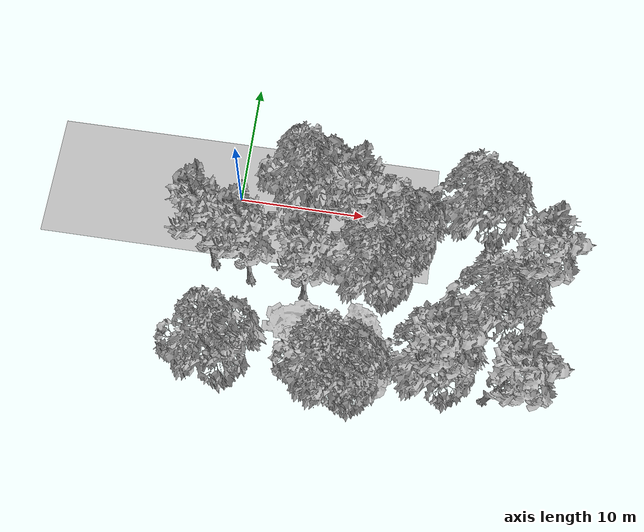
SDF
<sdf version="1.7">
 <world name="default">
  <model name="ground_plane">
   <static>1</static>
   <link name="link">
    <collision name="collision">
     <pose>-50 0 0 0 -0 0</pose>
     <geometry><plane><normal>0 0 1</normal><size>100 100</size></plane></geometry>
     <surface><contact><ode><min_depth>0.01</min_depth><max_vel>0</max_vel></ode></contact></surface>
    </collision>
    <visual name="grass">
     <cast_shadows>0</cast_shadows>
     <geometry>
      <mesh>
       <scale>0.5814285714285714 0.18142857142857144 0.1</scale>
       <uri>file://grass_plane/meshes/grass_plane.dae</uri>
      </mesh>
     </geometry>
    </visual>
   </link>
  </model>
  <model name="Tree 6">
   <static>1</static>
   <pose>12.257597133794576 -3.4394781878889944 0 1.57079 -0 0</pose>
   <link name="link">
    <collision name="collision">
     <geometry><mesh><scale>3.5 5 3.5</scale><uri>model://tree_2/meshes/tree_2.obj</uri></mesh></geometry>
    </collision>
    <visual name="visual">
     <geometry><mesh><scale>3.5 5 3.5</scale><uri>model://tree_2/meshes/tree_2.obj</uri></mesh></geometry>
    </visual>
   </link>
  </model>
  <model name="Tree 21">
   <static>1</static>
   <pose>10.91396890119536 -6.259870758829594 0 1.57079 -0 0</pose>
   <link name="link">
    <collision name="collision">
     <geometry><mesh><scale>3.5 5 3.5</scale><uri>model://tree_2/meshes/tree_2.obj</uri></mesh></geometry>
    </collision>
    <visual name="visual">
     <geometry><mesh><scale>3.5 5 3.5</scale><uri>model://tree_2/meshes/tree_2.obj</uri></mesh></geometry>
    </visual>
   </link>
  </model>
  <model name="Tree 28">
   <static>1</static>
   <pose>5.483641039165377 -0.23342204951496015 0 1.57079 -0 0</pose>
   <link name="link">
    <collision name="collision">
     <geometry><mesh><scale>3.5 5 3.5</scale><uri>model://tree_2/meshes/tree_2.obj</uri></mesh></geometry>
    </collision>
    <visual name="visual">
     <geometry><mesh><scale>3.5 5 3.5</scale><uri>model://tree_2/meshes/tree_2.obj</uri></mesh></geometry>
    </visual>
   </link>
  </model>
  <model name="Tree 30">
   <static>1</static>
   <pose>5.7039060267208725 -10.096312875466905 0 1.57079 -0 0</pose>
   <link name="link">
    <collision name="collision">
     <geometry><mesh><scale>3 2 3</scale><uri>model://tree_3/meshes/tree_3.obj</uri></mesh></geometry>
    </collision>
    <visual name="visual">
     <geometry><mesh><scale>3 2 3</scale><uri>model://tree_3/meshes/tree_3.obj</uri></mesh></geometry>
    </visual>
   </link>
  </model>
  <model name="Tree 35">
   <static>1</static>
   <pose>15.699044890828361 -12.399530788900833 0 1.57079 -0 0</pose>
   <link name="link">
    <collision name="collision">
     <geometry><mesh><scale>3.5 5 3.5</scale><uri>model://tree_2/meshes/tree_2.obj</uri></mesh></geometry>
    </collision>
    <visual name="visual">
     <geometry><mesh><scale>3.5 5 3.5</scale><uri>model://tree_2/meshes/tree_2.obj</uri></mesh></geometry>
    </visual>
   </link>
  </model>
  <model name="Tree 45">
   <static>1</static>
   <pose>19.88949454965031 -7.677687940242672 0 1.57079 -0 0</pose>
   <link name="link">
    <collision name="collision">
     <geometry><mesh><scale>3.5 5 3.5</scale><uri>model://tree_2/meshes/tree_2.obj</uri></mesh></geometry>
    </collision>
    <visual name="visual">
     <geometry><mesh><scale>3.5 5 3.5</scale><uri>model://tree_2/meshes/tree_2.obj</uri></mesh></geometry>
    </visual>
   </link>
  </model>
  <model name="Tree 48">
   <static>1</static>
   <pose>9.21684178712659 -2.8588024753292114 0 1.57079 -0 0</pose>
   <link name="link">
    <collision name="collision">
     <geometry><mesh><scale>3.5 5 3.5</scale><uri>model://tree_9/meshes/tree_9.obj</uri></mesh></geometry>
    </collision>
    <visual name="visual">
     <geometry><mesh><scale>3.5 5 3.5</scale><uri>model://tree_9/meshes/tree_9.obj</uri></mesh></geometry>
    </visual>
   </link>
  </model>
  <model name="Tree 55">
   <static>1</static>
   <pose>9.260439472353951 -11.455964216970532 0 1.57079 -0 0</pose>
   <link name="link">
    <collision name="collision">
     <geometry><mesh><scale>4 2.5 4</scale><uri>model://tree_1/meshes/tree_1.obj</uri></mesh></geometry>
    </collision>
    <visual name="visual">
     <geometry><mesh><scale>4 2.5 4</scale><uri>model://tree_1/meshes/tree_1.obj</uri></mesh></geometry>
    </visual>
   </link>
  </model>
  <model name="Tree 60">
   <static>1</static>
   <pose>11.603635441869116 -12.822718276974292 0 1.57079 -0 0</pose>
   <link name="link">
    <collision name="collision">
     <geometry><mesh><scale>4 2.5 4</scale><uri>model://tree_1/meshes/tree_1.obj</uri></mesh></geometry>
    </collision>
    <visual name="visual">
     <geometry><mesh><scale>4 2.5 4</scale><uri>model://tree_1/meshes/tree_1.obj</uri></mesh></geometry>
    </visual>
   </link>
  </model>
  <model name="Tree 77">
   <static>1</static>
   <pose>20.77809187120924 -13.472006076348713 0 1.57079 -0 0</pose>
   <link name="link">
    <collision name="collision">
     <geometry><mesh><scale>3.5 5 3.5</scale><uri>model://tree_9/meshes/tree_9.obj</uri></mesh></geometry>
    </collision>
    <visual name="visual">
     <geometry><mesh><scale>3.5 5 3.5</scale><uri>model://tree_9/meshes/tree_9.obj</uri></mesh></geometry>
    </visual>
   </link>
  </model>
  <model name="Tree 79">
   <static>1</static>
   <pose>21.756864564329717 -5.114468650336848 0 1.57079 -0 0</pose>
   <link name="link">
    <collision name="collision">
     <geometry><mesh><scale>3.5 5 3.5</scale><uri>model://tree_9/meshes/tree_9.obj</uri></mesh></geometry>
    </collision>
    <visual name="visual">
     <geometry><mesh><scale>3.5 5 3.5</scale><uri>model://tree_9/meshes/tree_9.obj</uri></mesh></geometry>
    </visual>
   </link>
  </model>
  <model name="Tree 88">
   <static>1</static>
   <pose>1.8088391954337766 -6.633378280942505 0 1.57079 -0 0</pose>
   <link name="link">
    <collision name="collision">
     <geometry><mesh><scale>3.5 5 3.5</scale><uri>model://tree_9/meshes/tree_9.obj</uri></mesh></geometry>
    </collision>
    <visual name="visual">
     <geometry><mesh><scale>3.5 5 3.5</scale><uri>model://tree_9/meshes/tree_9.obj</uri></mesh></geometry>
    </visual>
   </link>
  </model>
  <model name="Tree 90">
   <static>1</static>
   <pose>-1.1906902733155462 -5.712001681837776 0 1.57079 -0 0</pose>
   <link name="link">
    <collision name="collision">
     <geometry><mesh><scale>3.5 5 3.5</scale><uri>model://tree_9/meshes/tree_9.obj</uri></mesh></geometry>
    </collision>
    <visual name="visual">
     <geometry><mesh><scale>3.5 5 3.5</scale><uri>model://tree_9/meshes/tree_9.obj</uri></mesh></geometry>
    </visual>
   </link>
  </model>
  <model name="Tree 98">
   <static>1</static>
   <pose>0.41367612994005754 -13.280911073992712 0 1.57079 -0 0</pose>
   <link name="link">
    <collision name="collision">
     <geometry><mesh><scale>3.5 5 3.5</scale><uri>model://tree_2/meshes/tree_2.obj</uri></mesh></geometry>
    </collision>
    <visual name="visual">
     <geometry><mesh><scale>3.5 5 3.5</scale><uri>model://tree_2/meshes/tree_2.obj</uri></mesh></geometry>
    </visual>
   </link>
  </model>
  <model name="Tree 106">
   <static>1</static>
   <pose>15.549893884039605 -12.23140828380389 0 1.57079 -0 0</pose>
   <link name="link">
    <collision name="collision">
     <geometry><mesh><scale>3.5 5 3.5</scale><uri>model://tree_9/meshes/tree_9.obj</uri></mesh></geometry>
    </collision>
    <visual name="visual">
     <geometry><mesh><scale>3.5 5 3.5</scale><uri>model://tree_9/meshes/tree_9.obj</uri></mesh></geometry>
    </visual>
   </link>
  </model>
  <model name="Tree 119">
   <static>1</static>
   <pose>11.725811448798964 -12.211251277631456 0 1.57079 -0 0</pose>
   <link name="link">
    <collision name="collision">
     <geometry><mesh><scale>4 2.5 4</scale><uri>model://tree_1/meshes/tree_1.obj</uri></mesh></geometry>
    </collision>
    <visual name="visual">
     <geometry><mesh><scale>4 2.5 4</scale><uri>model://tree_1/meshes/tree_1.obj</uri></mesh></geometry>
    </visual>
   </link>
  </model>
  <model name="Tree 128">
   <static>1</static>
   <pose>6.1282649768443065 -7.4030112325026485 0 1.57079 -0 0</pose>
   <link name="link">
    <collision name="collision">
     <geometry><mesh><scale>3.5 5 3.5</scale><uri>model://tree_9/meshes/tree_9.obj</uri></mesh></geometry>
    </collision>
    <visual name="visual">
     <geometry><mesh><scale>3.5 5 3.5</scale><uri>model://tree_9/meshes/tree_9.obj</uri></mesh></geometry>
    </visual>
   </link>
  </model>
  <model name="Tree 134">
   <static>1</static>
   <pose>11.193312910563485 -5.917736585405478 0 1.57079 -0 0</pose>
   <link name="link">
    <collision name="collision">
     <geometry><mesh><scale>3 2 3</scale><uri>model://tree_3/meshes/tree_3.obj</uri></mesh></geometry>
    </collision>
    <visual name="visual">
     <geometry><mesh><scale>3 2 3</scale><uri>model://tree_3/meshes/tree_3.obj</uri></mesh></geometry>
    </visual>
   </link>
  </model>
  <model name="Tree 136">
   <static>1</static>
   <pose>18.165590344412834 -0.5325744983288914 0 1.57079 -0 0</pose>
   <link name="link">
    <collision name="collision">
     <geometry><mesh><scale>3.5 5 3.5</scale><uri>model://tree_2/meshes/tree_2.obj</uri></mesh></geometry>
    </collision>
    <visual name="visual">
     <geometry><mesh><scale>3.5 5 3.5</scale><uri>model://tree_2/meshes/tree_2.obj</uri></mesh></geometry>
    </visual>
   </link>
  </model>
  <model name="Tree 145">
   <static>1</static>
   <pose>10.681950322564177 -10.0528300799174 0 1.57079 -0 0</pose>
   <link name="link">
    <collision name="collision">
     <geometry><mesh><scale>4 2.5 4</scale><uri>model://tree_1/meshes/tree_1.obj</uri></mesh></geometry>
    </collision>
    <visual name="visual">
     <geometry><mesh><scale>4 2.5 4</scale><uri>model://tree_1/meshes/tree_1.obj</uri></mesh></geometry>
    </visual>
   </link>
  </model>
  <model name="Tree 159">
   <static>1</static>
   <pose>6.833688607814892 -11.553392023102823 0 1.57079 -0 0</pose>
   <link name="link">
    <collision name="collision">
     <geometry><mesh><scale>3 2 3</scale><uri>model://tree_3/meshes/tree_3.obj</uri></mesh></geometry>
    </collision>
    <visual name="visual">
     <geometry><mesh><scale>3 2 3</scale><uri>model://tree_3/meshes/tree_3.obj</uri></mesh></geometry>
    </visual>
   </link>
  </model>
  <model name="Tree 163">
   <static>1</static>
   <pose>8.542725359108275 -13.576070467317091 0 1.57079 -0 0</pose>
   <link name="link">
    <collision name="collision">
     <geometry><mesh><scale>3.5 5 3.5</scale><uri>model://tree_2/meshes/tree_2.obj</uri></mesh></geometry>
    </collision>
    <visual name="visual">
     <geometry><mesh><scale>3.5 5 3.5</scale><uri>model://tree_2/meshes/tree_2.obj</uri></mesh></geometry>
    </visual>
   </link>
  </model>
  <model name="Tree 170">
   <static>1</static>
   <pose>9.333472334097493 -13.952901160578794 0 1.57079 -0 0</pose>
   <link name="link">
    <collision name="collision">
     <geometry><mesh><scale>3.5 5 3.5</scale><uri>model://tree_2/meshes/tree_2.obj</uri></mesh></geometry>
    </collision>
    <visual name="visual">
     <geometry><mesh><scale>3.5 5 3.5</scale><uri>model://tree_2/meshes/tree_2.obj</uri></mesh></geometry>
    </visual>
   </link>
  </model>
 </world>
</sdf>
